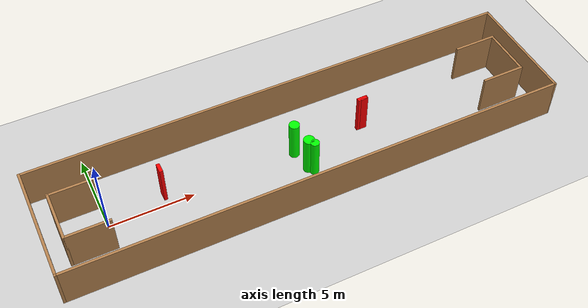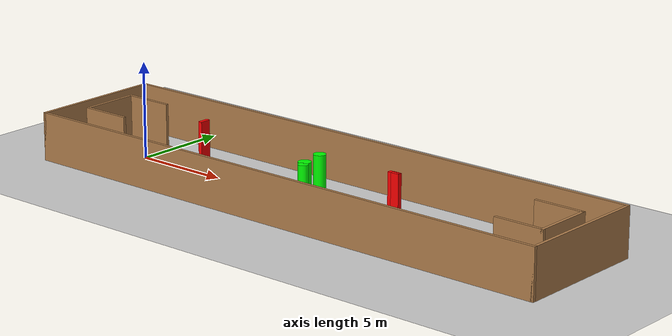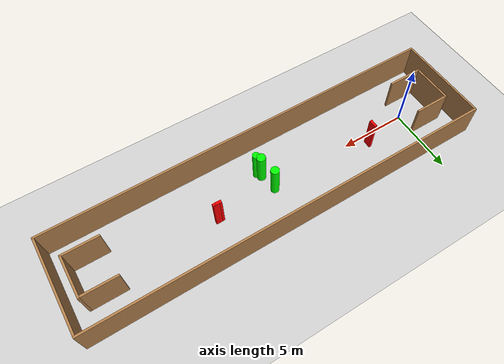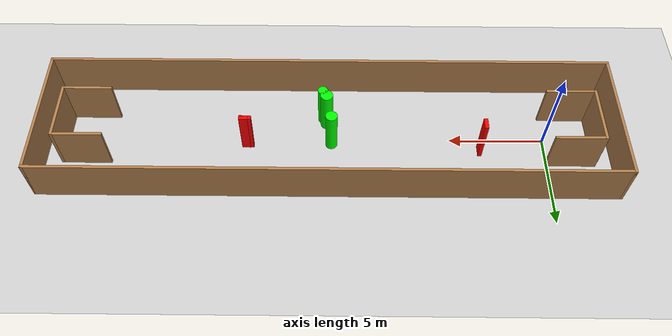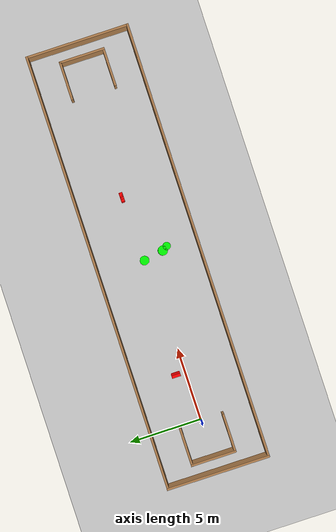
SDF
<sdf version="1.7">
 <world name="default">
  <light name="sun" type="directional">
   <pose>0 0 10 0 -0 0</pose>
   <diffuse>0.8 0.8 0.8 1</diffuse>
   <specular>0.2 0.2 0.2 1</specular>
   <attenuation>
    <range>1000</range>
    <constant>0.9</constant>
    <linear>0.01</linear>
    <quadratic>0.001</quadratic>
   </attenuation>
   <direction>-0.5 0.1 -0.9</direction>
   <spot><inner_angle>0</inner_angle><outer_angle>0</outer_angle><falloff>0</falloff></spot>
  </light>
  <model name="ground_plane">
   <static>1</static>
   <link name="link">
    <collision name="collision">
     <geometry><plane><normal>0 0 1</normal><size>100 100</size></plane></geometry>
     <surface>
      <contact><collide_bitmask>65535</collide_bitmask></contact>
      <friction><ode><mu>100</mu><mu2>50</mu2></ode></friction>
     </surface>
    </collision>
    <visual name="visual">
     <cast_shadows>0</cast_shadows>
     <geometry><plane><normal>0 0 1</normal><size>100 100</size></plane></geometry>
     <material>
      <script><uri>file://media/materials/scripts/gazebo.material</uri><name>Gazebo/Grey</name></script>
     </material>
    </visual>
   </link>
  </model>
  <gravity>0 0 -9.8</gravity>
  <magnetic_field>6e-06 2.3e-05 -4.2e-05</magnetic_field>
  <atmosphere type="adiabatic"/>
  <physics type="ode">
   <max_step_size>0.001</max_step_size>
   <real_time_factor>1</real_time_factor>
   <real_time_update_rate>1000</real_time_update_rate>
  </physics>
  <scene><ambient>0.4 0.4 0.4 1</ambient><background>0.7 0.7 0.7 1</background><shadows>1</shadows></scene>
  <spherical_coordinates>
   <surface_model>EARTH_WGS84</surface_model>
   <latitude_deg>0</latitude_deg>
   <longitude_deg>0</longitude_deg>
   <elevation>0</elevation>
   <heading_deg>0</heading_deg>
  </spherical_coordinates>
  <model name="my_base_walls">
   <link name="Wall_0">
    <collision name="Wall_0_Collision">
     <geometry><box><size>7.15 0.15 2.5</size></box></geometry>
     <pose>0 0 1.25 0 -0 0</pose>
    </collision>
    <visual name="Wall_0_Visual">
     <pose>0 0 1.25 0 -0 0</pose>
     <geometry><box><size>7.15 0.15 2.5</size></box></geometry>
     <material>
      <script><uri>file://media/materials/scripts/gazebo.material</uri><name>Gazebo/Wood</name></script>
      <ambient>1 1 1 1</ambient>
     </material>
     <meta><layer>0</layer></meta>
    </visual>
    <pose>-15 0 0 0 -0 1.5708</pose>
   </link>
   <link name="Wall_10">
    <collision name="Wall_10_Collision">
     <geometry><box><size>2.65 0.15 2.5</size></box></geometry>
     <pose>0 0 1.25 0 -0 0</pose>
    </collision>
    <visual name="Wall_10_Visual">
     <pose>0 0 1.25 0 -0 0</pose>
     <geometry><box><size>2.65 0.15 2.5</size></box></geometry>
     <material>
      <script><uri>file://media/materials/scripts/gazebo.material</uri><name>Gazebo/Wood</name></script>
      <ambient>1 1 1 1</ambient>
     </material>
     <meta><layer>0</layer></meta>
    </visual>
    <pose>-12.75 -1.5 0 0 -0 0</pose>
   </link>
   <link name="Wall_12">
    <collision name="Wall_12_Collision">
     <geometry><box><size>2.65 0.15 2.5</size></box></geometry>
     <pose>0 0 1.25 0 -0 0</pose>
    </collision>
    <visual name="Wall_12_Visual">
     <pose>0 0 1.25 0 -0 0</pose>
     <geometry><box><size>2.65 0.15 2.5</size></box></geometry>
     <material>
      <script><uri>file://media/materials/scripts/gazebo.material</uri><name>Gazebo/Wood</name></script>
      <ambient>1 1 1 1</ambient>
     </material>
     <meta><layer>0</layer></meta>
    </visual>
    <pose>-12.75 1.5 0 0 -0 0</pose>
   </link>
   <link name="Wall_14">
    <collision name="Wall_14_Collision">
     <geometry><box><size>3.15 0.15 2.5</size></box></geometry>
     <pose>0 0 1.25 0 -0 0</pose>
    </collision>
    <visual name="Wall_14_Visual">
     <pose>0 0 1.25 0 -0 0</pose>
     <geometry><box><size>3.15 0.15 2.5</size></box></geometry>
     <material>
      <script><uri>file://media/materials/scripts/gazebo.material</uri><name>Gazebo/Wood</name></script>
      <ambient>1 1 1 1</ambient>
     </material>
     <meta><layer>0</layer></meta>
    </visual>
    <pose>14 0 0 0 -0 -1.5708</pose>
   </link>
   <link name="Wall_15">
    <collision name="Wall_15_Collision">
     <geometry><box><size>2.65 0.15 2.5</size></box></geometry>
     <pose>0 0 1.25 0 -0 0</pose>
    </collision>
    <visual name="Wall_15_Visual">
     <pose>0 0 1.25 0 -0 0</pose>
     <geometry><box><size>2.65 0.15 2.5</size></box></geometry>
     <material>
      <script><uri>file://media/materials/scripts/gazebo.material</uri><name>Gazebo/Wood</name></script>
      <ambient>1 1 1 1</ambient>
     </material>
     <meta><layer>0</layer></meta>
    </visual>
    <pose>12.75 -1.5 0 0 -0 3.14159</pose>
   </link>
   <link name="Wall_17">
    <collision name="Wall_17_Collision">
     <geometry><box><size>2.65 0.15 2.5</size></box></geometry>
     <pose>0 0 1.25 0 -0 0</pose>
    </collision>
    <visual name="Wall_17_Visual">
     <pose>0 0 1.25 0 -0 0</pose>
     <geometry><box><size>2.65 0.15 2.5</size></box></geometry>
     <material>
      <script><uri>file://media/materials/scripts/gazebo.material</uri><name>Gazebo/Wood</name></script>
      <ambient>1 1 1 1</ambient>
     </material>
     <meta><layer>0</layer></meta>
    </visual>
    <pose>12.75 1.5 0 0 -0 3.14159</pose>
   </link>
   <link name="Wall_2">
    <collision name="Wall_2_Collision">
     <geometry><box><size>30.15 0.15 2.5</size></box></geometry>
     <pose>0 0 1.25 0 -0 0</pose>
    </collision>
    <visual name="Wall_2_Visual">
     <pose>0 0 1.25 0 -0 0</pose>
     <geometry><box><size>30.15 0.15 2.5</size></box></geometry>
     <material>
      <script><uri>file://media/materials/scripts/gazebo.material</uri><name>Gazebo/Wood</name></script>
      <ambient>1 1 1 1</ambient>
     </material>
     <meta><layer>0</layer></meta>
    </visual>
    <pose>-0 -3.5 0 0 -0 0</pose>
   </link>
   <link name="Wall_4">
    <collision name="Wall_4_Collision">
     <geometry><box><size>30.15 0.15 2.5</size></box></geometry>
     <pose>0 0 1.25 0 -0 0</pose>
    </collision>
    <visual name="Wall_4_Visual">
     <pose>0 0 1.25 0 -0 0</pose>
     <geometry><box><size>30.15 0.15 2.5</size></box></geometry>
     <material>
      <script><uri>file://media/materials/scripts/gazebo.material</uri><name>Gazebo/Wood</name></script>
      <ambient>1 1 1 1</ambient>
     </material>
     <meta><layer>0</layer></meta>
    </visual>
    <pose>-0 3.5 0 0 -0 0</pose>
   </link>
   <link name="Wall_6">
    <collision name="Wall_6_Collision">
     <geometry><box><size>7.15 0.15 2.5</size></box></geometry>
     <pose>0 0 1.25 0 -0 0</pose>
    </collision>
    <visual name="Wall_6_Visual">
     <pose>0 0 1.25 0 -0 0</pose>
     <geometry><box><size>7.15 0.15 2.5</size></box></geometry>
     <material>
      <script><uri>file://media/materials/scripts/gazebo.material</uri><name>Gazebo/Wood</name></script>
      <ambient>1 1 1 1</ambient>
     </material>
     <meta><layer>0</layer></meta>
    </visual>
    <pose>15 0 0 0 -0 -1.5708</pose>
   </link>
   <link name="Wall_9">
    <collision name="Wall_9_Collision">
     <geometry><box><size>3.15 0.15 2.5</size></box></geometry>
     <pose>0 0 1.25 0 -0 0</pose>
    </collision>
    <visual name="Wall_9_Visual">
     <pose>0 0 1.25 0 -0 0</pose>
     <geometry><box><size>3.15 0.15 2.5</size></box></geometry>
     <material>
      <script><uri>file://media/materials/scripts/gazebo.material</uri><name>Gazebo/Wood</name></script>
      <ambient>1 1 1 1</ambient>
     </material>
     <meta><layer>0</layer></meta>
    </visual>
    <pose>-14 0 0 0 -0 -1.5708</pose>
   </link>
   <static>1</static>
   <pose>11.5 0 0 0 -0 0</pose>
  </model>
  <model name="cylinder1">
   <static>1</static>
   <link name="link">
    <inertial>
     <mass>1</mass>
     <inertia><ixx>0.5</ixx><ixy>0</ixy><ixz>0</ixz><iyy>0.5</iyy><iyz>0</iyz><izz>1</izz></inertia>
    </inertial>
    <collision name="collision">
     <geometry><cylinder><radius>0.26218385783660425</radius><length>2.5</length></cylinder></geometry>
    </collision>
    <visual name="visual">
     <geometry><cylinder><radius>0.26218385783660425</radius><length>2.5</length></cylinder></geometry>
     <material>
      <ambient>0 1 0 1</ambient>
      <diffuse>0 1 0 1</diffuse>
      <specular>0.1 0.1 0.1 1</specular>
      <emissive>0 0 0 0</emissive>
     </material>
    </visual>
   </link>
   <pose>11.804989837961681 -1.4176775814845133 1.25 0 0 0</pose>
  </model>
  <model name="cylinder2">
   <static>1</static>
   <link name="link">
    <inertial>
     <mass>1</mass>
     <inertia><ixx>0.5</ixx><ixy>0</ixy><ixz>0</ixz><iyy>0.5</iyy><iyz>0</iyz><izz>1</izz></inertia>
    </inertial>
    <collision name="collision">
     <geometry><cylinder><radius>0.3297627291019161</radius><length>2.5</length></cylinder></geometry>
    </collision>
    <visual name="visual">
     <geometry><cylinder><radius>0.3297627291019161</radius><length>2.5</length></cylinder></geometry>
     <material>
      <ambient>0 1 0 1</ambient>
      <diffuse>0 1 0 1</diffuse>
      <specular>0.1 0.1 0.1 1</specular>
      <emissive>0 0 0 0</emissive>
     </material>
    </visual>
   </link>
   <pose>11.604193575014445 -1.089001164255139 1.25 0 0 0</pose>
  </model>
  <model name="cylinder3">
   <static>1</static>
   <link name="link">
    <inertial>
     <mass>1</mass>
     <inertia><ixx>0.5</ixx><ixy>0</ixy><ixz>0</ixz><iyy>0.5</iyy><iyz>0</iyz><izz>1</izz></inertia>
    </inertial>
    <collision name="collision">
     <geometry><cylinder><radius>0.3119406505930455</radius><length>2.5</length></cylinder></geometry>
    </collision>
    <visual name="visual">
     <geometry><cylinder><radius>0.3119406505930455</radius><length>2.5</length></cylinder></geometry>
     <material>
      <ambient>0 1 0 1</ambient>
      <diffuse>0 1 0 1</diffuse>
      <specular>0.1 0.1 0.1 1</specular>
      <emissive>0 0 0 0</emissive>
     </material>
    </visual>
   </link>
   <pose>11.349545964516535 0.2694629843369354 1.25 0 0 0</pose>
  </model>
  <model name="box1">
   <static>1</static>
   <link name="link">
    <inertial>
     <mass>1</mass>
     <inertia><ixx>0.083</ixx><ixy>0</ixy><ixz>0</ixz><iyy>0.083</iyy><iyz>0</iyz><izz>0.083</izz></inertia>
    </inertial>
    <collision name="collision">
     <geometry><box><size>0.4480529272150523 0.24027081234935266 2.5</size></box></geometry>
    </collision>
    <visual name="visual">
     <geometry><box><size>0.4480529272150523 0.24027081234935266 2.5</size></box></geometry>
     <material>
      <ambient>1 0 0 1</ambient>
      <diffuse>1 0 0 1</diffuse>
      <specular>0.1 0.1 0.1 1</specular>
      <emissive>0 0 0 0</emissive>
     </material>
    </visual>
    <sensor name="my_contact" type="contact">
     <contact><collision>box_collision</collision><topic>__default_topic__</topic></contact>
    </sensor>
   </link>
   <pose>15.885291228165226 0.398829385002581 1.25 0 0 0</pose>
  </model>
  <model name="box2">
   <static>1</static>
   <link name="link">
    <inertial>
     <mass>1</mass>
     <inertia><ixx>0.083</ixx><ixy>0</ixy><ixz>0</ixz><iyy>0.083</iyy><iyz>0</iyz><izz>0.083</izz></inertia>
    </inertial>
    <collision name="collision">
     <geometry><box><size>0.20240189564083177 0.5938631819267696 2.5</size></box></geometry>
    </collision>
    <visual name="visual">
     <geometry><box><size>0.20240189564083177 0.5938631819267696 2.5</size></box></geometry>
     <material>
      <ambient>1 0 0 1</ambient>
      <diffuse>1 0 0 1</diffuse>
      <specular>0.1 0.1 0.1 1</specular>
      <emissive>0 0 0 0</emissive>
     </material>
    </visual>
    <sensor name="my_contact" type="contact">
     <contact><collision>box_collision</collision><topic>__default_topic__</topic></contact>
    </sensor>
   </link>
   <pose>3.45921830516499 0.658953689044611 1.25 0 0 0</pose>
  </model>
  <model name="box3">
   <static>1</static>
   <link name="link">
    <inertial>
     <mass>1</mass>
     <inertia><ixx>0.083</ixx><ixy>0</ixy><ixz>0</ixz><iyy>0.083</iyy><iyz>0</iyz><izz>0.083</izz></inertia>
    </inertial>
    <collision name="collision">
     <geometry><box><size>0.5727538047830976 0.23152043043068166 2.5</size></box></geometry>
    </collision>
    <visual name="visual">
     <geometry><box><size>0.5727538047830976 0.23152043043068166 2.5</size></box></geometry>
     <material>
      <ambient>1 0 0 1</ambient>
      <diffuse>1 0 0 1</diffuse>
      <specular>0.1 0.1 0.1 1</specular>
      <emissive>0 0 0 0</emissive>
     </material>
    </visual>
    <sensor name="my_contact" type="contact">
     <contact><collision>box_collision</collision><topic>__default_topic__</topic></contact>
    </sensor>
   </link>
   <pose>15.767663842278607 0.39462394388081323 1.25 0 0 0</pose>
  </model>
 </world>
</sdf>
